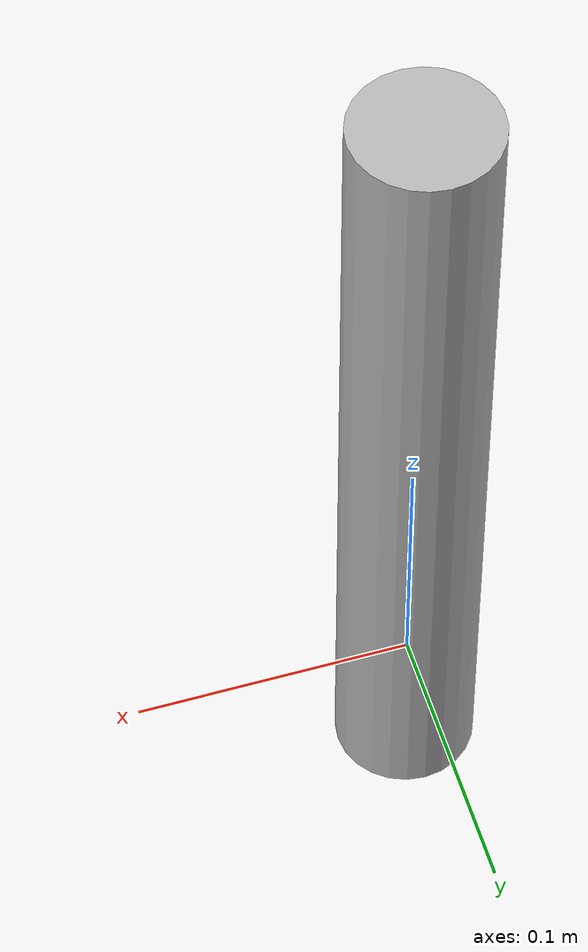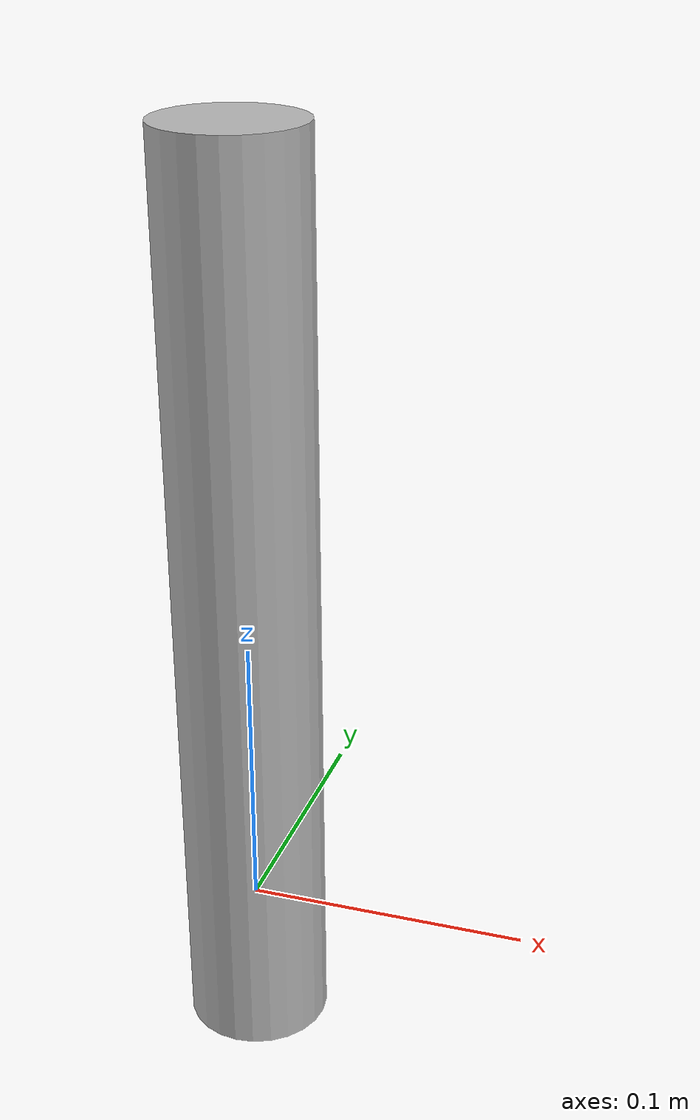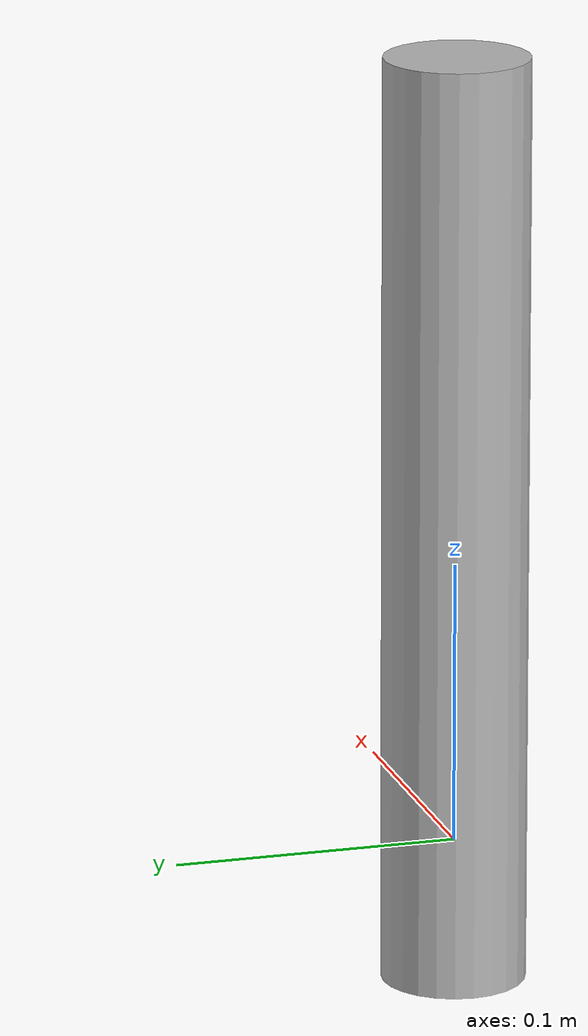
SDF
<?xml version='1.0'?>
<sdf version='1.4'>
  <model name="beer_heavy">
    <link name='link'>
      <pose>0 0 0.115 0 0 0</pose>
      <inertial>
        <mass>5.390</mass>
        <inertia>
          <ixx>0.049790</ixx>
          <ixy>0</ixy>
          <ixz>0</ixz>
          <iyy>0.049790</iyy>
          <iyz>0</iyz>
          <izz>0.0017524</izz>
        </inertia>
      </inertial>
      <collision name='collision'>
        <geometry>
          <cylinder>
            <radius>0.0255000</radius>
            <length>0.330000</length>
          </cylinder>
        </geometry>
        <surface>
        <friction>
        <ode>
        <mu>1.5</mu>
        <mu2>1.5</mu2>
        </ode>
        </friction>
        <contact>
        <ode>
        <min_depth>0.003</min_depth>
        </ode>
        </contact>
        </surface>
      </collision>

      <visual name='visual'>
        <geometry>
          <cylinder>
            <radius>0.0255000</radius>
            <length>0.330000</length>
          </cylinder>
        </geometry>

        <material>
          <script>
            <uri>model://beer/materials/scripts</uri>
            <uri>model://beer/materials/textures</uri>
            <name>Beer/Diffuse</name>
          </script>
        </material>
      </visual>
    </link>
  </model>
</sdf>
